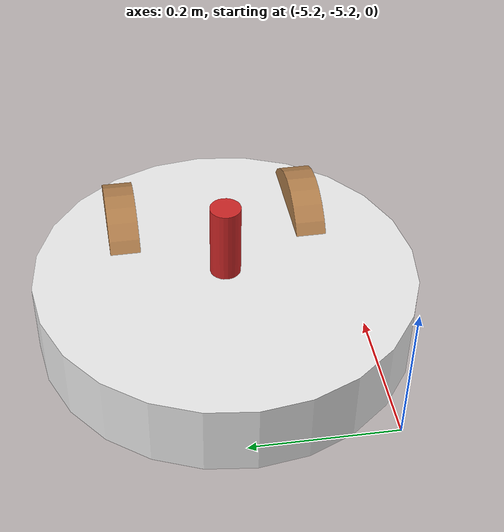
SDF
<sdf version="1.7">
 <world name="default">
  <model name="logger1">
   <link name="logger-chassis">
    <inertial>
     <pose>0.005952 0 -0.002381 0 -0 0</pose>
     <mass>2.1</mass>
     <inertia>
      <ixx>0.0332188</ixx>
      <ixy>0</ixy>
      <ixz>0.000595238</ixz>
      <iyy>0.0347069</iyy>
      <iyz>0</iyz>
      <izz>0.0640521</izz>
     </inertia>
    </inertial>
    <collision name="logger-chassis_collision">
     <geometry><cylinder><length>0.1</length><radius>0.25</radius></cylinder></geometry>
     <surface><friction><ode><mu>0.5</mu><mu2>0.5</mu2></ode></friction></surface>
    </collision>
    <collision name="logger-chassis_fixed_joint_lump__logger-caster_collision_1">
     <pose>0.125 0 -0.05 0 -0 0</pose>
     <geometry><sphere><radius>0.04</radius></sphere></geometry>
     <surface><friction><ode><mu>0</mu><mu2>0</mu2></ode></friction></surface>
    </collision>
    <visual name="logger-chassis_visual">
     <geometry><cylinder><length>0.1</length><radius>0.25</radius></cylinder></geometry>
     <material>
      <script><name>Gazebo/White</name><uri>file://media/materials/scripts/gazebo.material</uri></script>
     </material>
    </visual>
    <visual name="logger-chassis_fixed_joint_lump__logger-caster_visual_1">
     <pose>0.125 0 -0.05 0 -0 0</pose>
     <geometry><sphere><radius>0.04</radius></sphere></geometry>
     <material>
      <script><name>Gazebo/Grey</name><uri>file://media/materials/scripts/gazebo.material</uri></script>
     </material>
    </visual>
   </link>
   <joint name="logger-chassis2hat" type="revolute">
    <pose relative_to="logger-chassis">0 0 0.1 0 -0 0</pose>
    <parent>logger-chassis</parent>
    <child>logger-hat</child>
    <axis>
     <xyz>0 0 1</xyz>
     <limit><lower>-1e+16</lower><upper>1e+16</upper></limit>
     <dynamics><spring_reference>0</spring_reference><spring_stiffness>0</spring_stiffness></dynamics>
    </axis>
   </joint>
   <link name="logger-hat">
    <pose relative_to="logger-chassis2hat">0 0 0 0 -0 0</pose>
    <inertial>
     <pose>0 0 0.04 0 -0 0</pose>
     <mass>0.5</mass>
     <inertia>
      <ixx>0.000466667</ixx>
      <ixy>0</ixy>
      <ixz>0</ixz>
      <iyy>0.000466667</iyy>
      <iyz>0</iyz>
      <izz>0.0001</izz>
     </inertia>
    </inertial>
    <collision name="logger-hat_collision">
     <geometry><cylinder><length>0.1</length><radius>0.02</radius></cylinder></geometry>
     <surface><friction><ode><mu>0</mu><mu2>0</mu2></ode></friction></surface>
    </collision>
    <visual name="logger-hat_visual">
     <geometry><cylinder><length>0.1</length><radius>0.02</radius></cylinder></geometry>
     <material>
      <script><name>Gazebo/Red</name><uri>file://media/materials/scripts/gazebo.material</uri></script>
     </material>
    </visual>
   </link>
   <joint name="logger-chassis2left_wheel" type="revolute">
    <pose relative_to="logger-chassis">-0.125 -0.125 0 0 -0 0</pose>
    <parent>logger-chassis</parent>
    <child>logger-left_wheel</child>
    <axis>
     <xyz>0 1 0</xyz>
     <limit><lower>-1e+16</lower><upper>1e+16</upper></limit>
     <dynamics><spring_reference>0</spring_reference><spring_stiffness>0</spring_stiffness></dynamics>
    </axis>
   </joint>
   <link name="logger-left_wheel">
    <pose relative_to="logger-chassis2left_wheel">0 0 0 0 -0 0</pose>
    <inertial>
     <pose>0 0 0 1.5708 -0 0</pose>
     <mass>0.5</mass>
     <inertia>
      <ixx>0.00107917</ixx>
      <ixy>0</ixy>
      <ixz>0</ixz>
      <iyy>0.00107917</iyy>
      <iyz>0</iyz>
      <izz>0.002025</izz>
     </inertia>
    </inertial>
    <collision name="logger-left_wheel_collision">
     <pose>0 0 0 1.5708 -0 0</pose>
     <geometry><cylinder><length>0.04</length><radius>0.09</radius></cylinder></geometry>
     <surface><friction><ode><mu>0.99</mu><mu2>0.99</mu2></ode></friction></surface>
    </collision>
    <visual name="logger-left_wheel_visual">
     <pose>0 0 0 1.5708 -0 0</pose>
     <geometry><cylinder><length>0.04</length><radius>0.09</radius></cylinder></geometry>
     <material>
      <script><name>Gazebo/Wood</name><uri>file://media/materials/scripts/gazebo.material</uri></script>
     </material>
    </visual>
   </link>
   <joint name="logger-chassis2right_wheel" type="revolute">
    <pose relative_to="logger-chassis">-0.125 0.125 0 0 -0 0</pose>
    <parent>logger-chassis</parent>
    <child>logger-right_wheel</child>
    <axis>
     <xyz>0 1 0</xyz>
     <limit><lower>-1e+16</lower><upper>1e+16</upper></limit>
     <dynamics><spring_reference>0</spring_reference><spring_stiffness>0</spring_stiffness></dynamics>
    </axis>
   </joint>
   <link name="logger-right_wheel">
    <pose relative_to="logger-chassis2right_wheel">0 0 0 0 -0 0</pose>
    <inertial>
     <pose>0 0 0 1.5708 -0 0</pose>
     <mass>0.5</mass>
     <inertia>
      <ixx>0.00107917</ixx>
      <ixy>0</ixy>
      <ixz>0</ixz>
      <iyy>0.00107917</iyy>
      <iyz>0</iyz>
      <izz>0.002025</izz>
     </inertia>
    </inertial>
    <collision name="logger-right_wheel_collision">
     <pose>0 0 0 1.5708 -0 0</pose>
     <geometry><cylinder><length>0.04</length><radius>0.09</radius></cylinder></geometry>
     <surface><friction><ode><mu>0.99</mu><mu2>0.99</mu2></ode></friction></surface>
    </collision>
    <visual name="logger-right_wheel_visual">
     <pose>0 0 0 1.5708 -0 0</pose>
     <geometry><cylinder><length>0.04</length><radius>0.09</radius></cylinder></geometry>
     <material>
      <script><name>Gazebo/Wood</name><uri>file://media/materials/scripts/gazebo.material</uri></script>
     </material>
    </visual>
   </link>
   <static>0</static>
   <plugin name="differential_drive_controller" filename="libgazebo_ros_diff_drive.so">
    <legacyMode>0</legacyMode>
    <alwaysOn>1</alwaysOn>
    <updateRate>100</updateRate>
    <leftJoint>logger-chassis2left_wheel</leftJoint>
    <rightJoint>logger-chassis2right_wheel</rightJoint>
    <wheelSeparation>0.25</wheelSeparation>
    <wheelDiameter>0.18</wheelDiameter>
    <wheelTorque>1</wheelTorque>
    <commandTopic>logger1/cmd_vel</commandTopic>
    <odometryTopic>odom</odometryTopic>
    <odometryFrame>odom</odometryFrame>
    <robotBaseFrame>logger-chassis</robotBaseFrame>
    <robotNamespace>/</robotNamespace>
   </plugin>
   <pose>-5.0151 -5.00017 0.09 0 0 -3.13203</pose>
  </model>
 </world>
</sdf>
